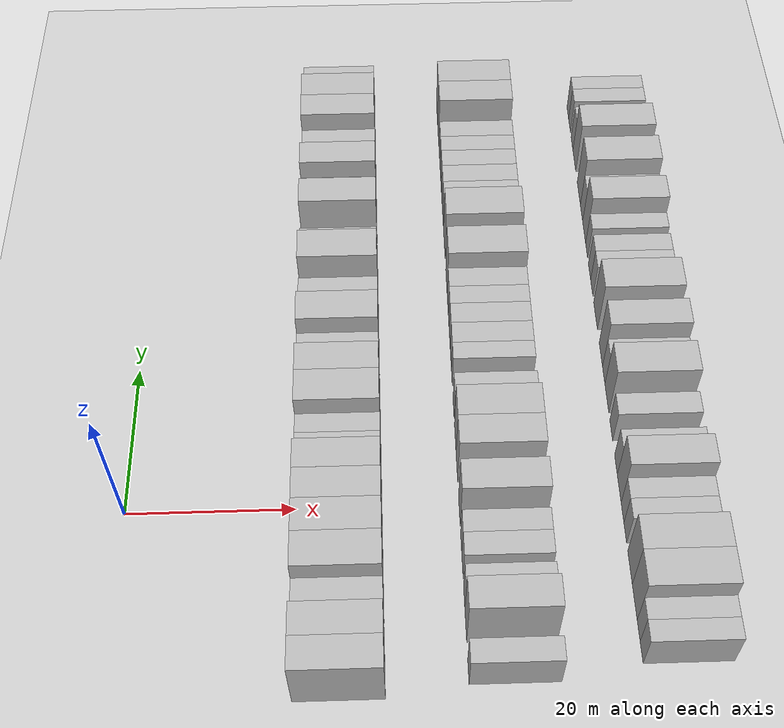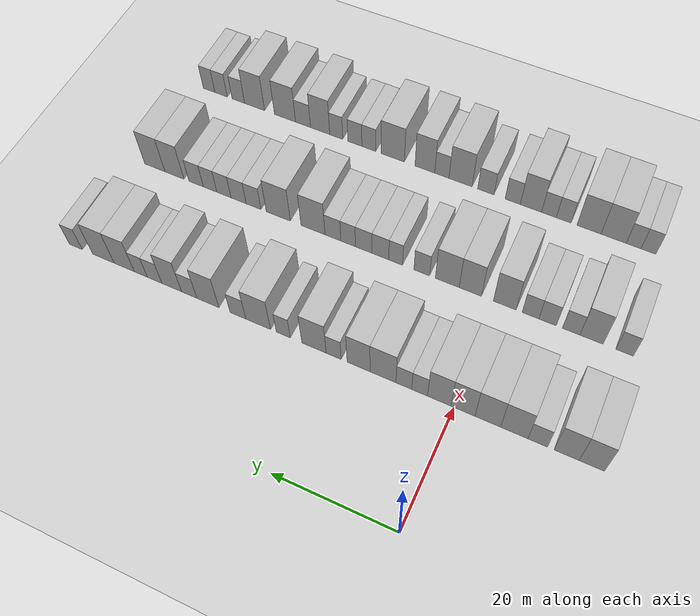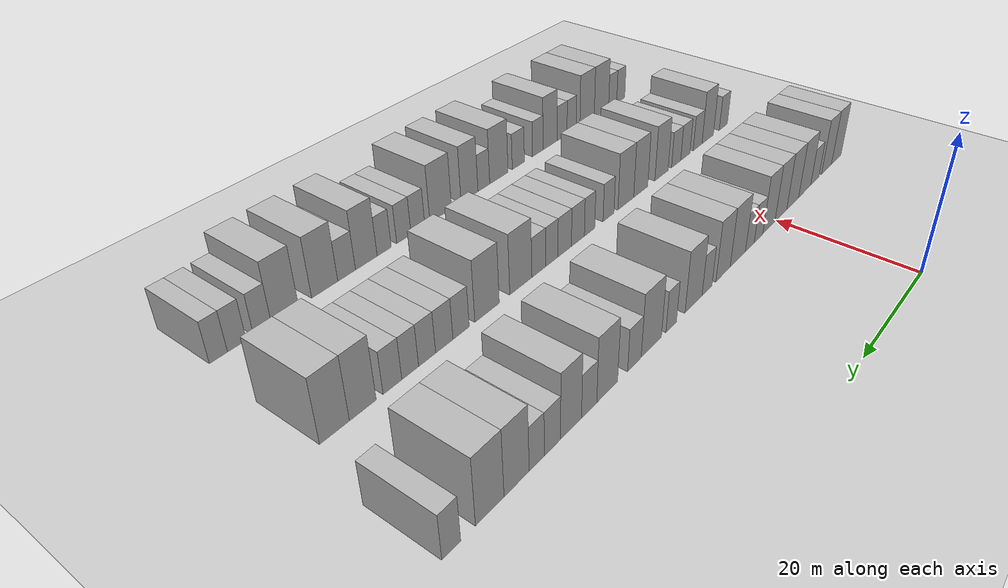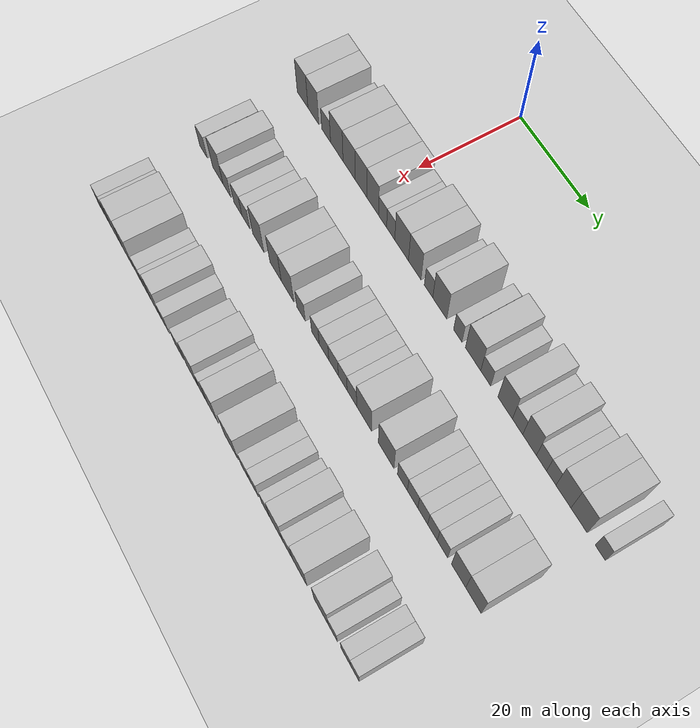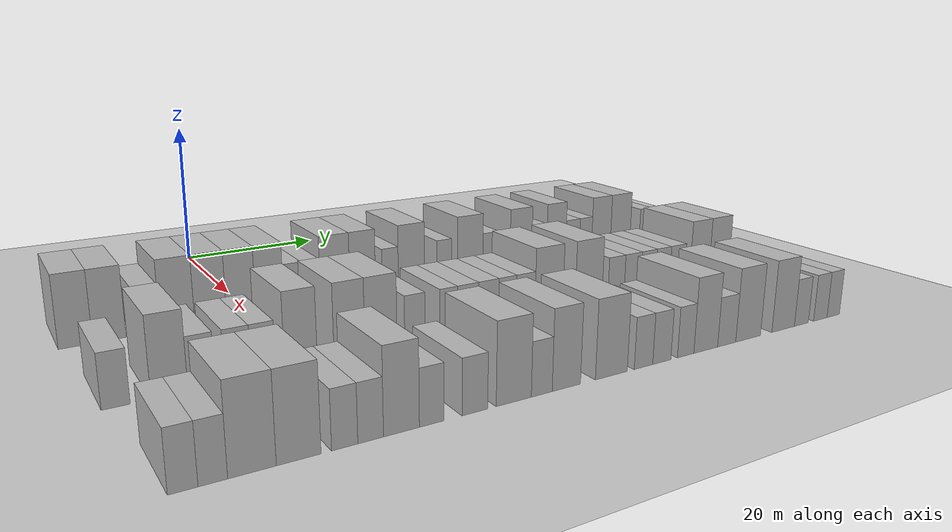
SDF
<sdf version="1.6">
 <world name="default">
  <include><name>ground_plane_1</name><uri>model://HANNAS_ground_plane</uri></include>
  <model name="building_81">
   <static>1</static>
   <pose>25.0000 -21.1155 0 0.000000 0.000000 0.000000</pose>
   <link name="link">
    <pose>0 0 4.50 0 0 0</pose>
    <collision name="collision"><geometry><box><size>10.0000 3.7570 9.0000</size></box></geometry></collision>
    <visual name="visual">
     <cast_shadows>0</cast_shadows>
     <geometry><box><size>10.0000 3.7570 9.0000</size></box></geometry>
     <material>
      <script>
       <uri>model://HANNAS_wall/materials/scripts</uri>
       <uri>model://HANNAS_wall/materials/textures</uri>
       <name>vrc/HANNAS_wall</name>
      </script>
     </material>
    </visual>
   </link>
  </model>
  <model name="building_82">
   <static>1</static>
   <pose>25.0000 -17.3538 0 0.000000 0.000000 0.000000</pose>
   <link name="link">
    <pose>0 0 4.50 0 0 0</pose>
    <collision name="collision"><geometry><box><size>10.0000 3.7665 9.0000</size></box></geometry></collision>
    <visual name="visual">
     <cast_shadows>0</cast_shadows>
     <geometry><box><size>10.0000 3.7665 9.0000</size></box></geometry>
     <material>
      <script>
       <uri>model://HANNAS_wall/materials/scripts</uri>
       <uri>model://HANNAS_wall/materials/textures</uri>
       <name>vrc/HANNAS_wall</name>
      </script>
     </material>
    </visual>
   </link>
  </model>
  <model name="building_83">
   <static>1</static>
   <pose>25.0000 -12.9726 0 0.000000 0.000000 0.000000</pose>
   <link name="link">
    <pose>0 0 3.00 0 0 0</pose>
    <collision name="collision"><geometry><box><size>10.0000 2.9958 6.0000</size></box></geometry></collision>
    <visual name="visual">
     <cast_shadows>0</cast_shadows>
     <geometry><box><size>10.0000 2.9958 6.0000</size></box></geometry>
     <material>
      <script>
       <uri>model://HANNAS_wall/materials/scripts</uri>
       <uri>model://HANNAS_wall/materials/textures</uri>
       <name>vrc/HANNAS_wall</name>
      </script>
     </material>
    </visual>
   </link>
  </model>
  <model name="building_84">
   <static>1</static>
   <pose>25.0000 -9.3769 0 0.000000 0.000000 0.000000</pose>
   <link name="link">
    <pose>0 0 4.50 0 0 0</pose>
    <collision name="collision"><geometry><box><size>10.0000 4.1956 9.0000</size></box></geometry></collision>
    <visual name="visual">
     <cast_shadows>0</cast_shadows>
     <geometry><box><size>10.0000 4.1956 9.0000</size></box></geometry>
     <material>
      <script>
       <uri>model://HANNAS_wall/materials/scripts</uri>
       <uri>model://HANNAS_wall/materials/textures</uri>
       <name>vrc/HANNAS_wall</name>
      </script>
     </material>
    </visual>
   </link>
  </model>
  <model name="building_85">
   <static>1</static>
   <pose>25.0000 -5.2779 0 0.000000 0.000000 0.000000</pose>
   <link name="link">
    <pose>0 0 4.50 0 0 0</pose>
    <collision name="collision"><geometry><box><size>10.0000 4.0022 9.0000</size></box></geometry></collision>
    <visual name="visual">
     <cast_shadows>0</cast_shadows>
     <geometry><box><size>10.0000 4.0022 9.0000</size></box></geometry>
     <material>
      <script>
       <uri>model://HANNAS_wall/materials/scripts</uri>
       <uri>model://HANNAS_wall/materials/textures</uri>
       <name>vrc/HANNAS_wall</name>
      </script>
     </material>
    </visual>
   </link>
  </model>
  <model name="building_86">
   <static>1</static>
   <pose>25.0000 -1.3721 0 0.000000 0.000000 0.000000</pose>
   <link name="link">
    <pose>0 0 4.50 0 0 0</pose>
    <collision name="collision"><geometry><box><size>10.0000 3.8095 9.0000</size></box></geometry></collision>
    <visual name="visual">
     <cast_shadows>0</cast_shadows>
     <geometry><box><size>10.0000 3.8095 9.0000</size></box></geometry>
     <material>
      <script>
       <uri>model://HANNAS_wall/materials/scripts</uri>
       <uri>model://HANNAS_wall/materials/textures</uri>
       <name>vrc/HANNAS_wall</name>
      </script>
     </material>
    </visual>
   </link>
  </model>
  <model name="building_87">
   <static>1</static>
   <pose>25.0000 2.4082 0 0.000000 0.000000 0.000000</pose>
   <link name="link">
    <pose>0 0 4.50 0 0 0</pose>
    <collision name="collision"><geometry><box><size>10.0000 3.7510 9.0000</size></box></geometry></collision>
    <visual name="visual">
     <cast_shadows>0</cast_shadows>
     <geometry><box><size>10.0000 3.7510 9.0000</size></box></geometry>
     <material>
      <script>
       <uri>model://HANNAS_wall/materials/scripts</uri>
       <uri>model://HANNAS_wall/materials/textures</uri>
       <name>vrc/HANNAS_wall</name>
      </script>
     </material>
    </visual>
   </link>
  </model>
  <model name="building_88">
   <static>1</static>
   <pose>25.0000 5.5675 0 0.000000 0.000000 0.000000</pose>
   <link name="link">
    <pose>0 0 3.00 0 0 0</pose>
    <collision name="collision"><geometry><box><size>10.0000 2.5676 6.0000</size></box></geometry></collision>
    <visual name="visual">
     <cast_shadows>0</cast_shadows>
     <geometry><box><size>10.0000 2.5676 6.0000</size></box></geometry>
     <material>
      <script>
       <uri>model://HANNAS_wall/materials/scripts</uri>
       <uri>model://HANNAS_wall/materials/textures</uri>
       <name>vrc/HANNAS_wall</name>
      </script>
     </material>
    </visual>
   </link>
  </model>
  <model name="building_89">
   <static>1</static>
   <pose>25.0000 8.1268 0 0.000000 0.000000 0.000000</pose>
   <link name="link">
    <pose>0 0 3.00 0 0 0</pose>
    <collision name="collision"><geometry><box><size>10.0000 2.5512 6.0000</size></box></geometry></collision>
    <visual name="visual">
     <cast_shadows>0</cast_shadows>
     <geometry><box><size>10.0000 2.5512 6.0000</size></box></geometry>
     <material>
      <script>
       <uri>model://HANNAS_wall/materials/scripts</uri>
       <uri>model://HANNAS_wall/materials/textures</uri>
       <name>vrc/HANNAS_wall</name>
      </script>
     </material>
    </visual>
   </link>
  </model>
  <model name="building_90">
   <static>1</static>
   <pose>25.0000 11.5328 0 0.000000 0.000000 0.000000</pose>
   <link name="link">
    <pose>0 0 4.50 0 0 0</pose>
    <collision name="collision"><geometry><box><size>10.0000 4.2607 9.0000</size></box></geometry></collision>
    <visual name="visual">
     <cast_shadows>0</cast_shadows>
     <geometry><box><size>10.0000 4.2607 9.0000</size></box></geometry>
     <material>
      <script>
       <uri>model://HANNAS_wall/materials/scripts</uri>
       <uri>model://HANNAS_wall/materials/textures</uri>
       <name>vrc/HANNAS_wall</name>
      </script>
     </material>
    </visual>
   </link>
  </model>
  <model name="building_91">
   <static>1</static>
   <pose>25.0000 15.5744 0 0.000000 0.000000 0.000000</pose>
   <link name="link">
    <pose>0 0 4.50 0 0 0</pose>
    <collision name="collision"><geometry><box><size>10.0000 3.8226 9.0000</size></box></geometry></collision>
    <visual name="visual">
     <cast_shadows>0</cast_shadows>
     <geometry><box><size>10.0000 3.8226 9.0000</size></box></geometry>
     <material>
      <script>
       <uri>model://HANNAS_wall/materials/scripts</uri>
       <uri>model://HANNAS_wall/materials/textures</uri>
       <name>vrc/HANNAS_wall</name>
      </script>
     </material>
    </visual>
   </link>
  </model>
  <model name="building_92">
   <static>1</static>
   <pose>25.0000 19.7482 0 0.000000 0.000000 0.000000</pose>
   <link name="link">
    <pose>0 0 3.00 0 0 0</pose>
    <collision name="collision"><geometry><box><size>10.0000 2.5250 6.0000</size></box></geometry></collision>
    <visual name="visual">
     <cast_shadows>0</cast_shadows>
     <geometry><box><size>10.0000 2.5250 6.0000</size></box></geometry>
     <material>
      <script>
       <uri>model://HANNAS_wall/materials/scripts</uri>
       <uri>model://HANNAS_wall/materials/textures</uri>
       <name>vrc/HANNAS_wall</name>
      </script>
     </material>
    </visual>
   </link>
  </model>
  <model name="building_93">
   <static>1</static>
   <pose>25.0000 23.0848 0 0.000000 0.000000 0.000000</pose>
   <link name="link">
    <pose>0 0 4.50 0 0 0</pose>
    <collision name="collision"><geometry><box><size>10.0000 4.1483 9.0000</size></box></geometry></collision>
    <visual name="visual">
     <cast_shadows>0</cast_shadows>
     <geometry><box><size>10.0000 4.1483 9.0000</size></box></geometry>
     <material>
      <script>
       <uri>model://HANNAS_wall/materials/scripts</uri>
       <uri>model://HANNAS_wall/materials/textures</uri>
       <name>vrc/HANNAS_wall</name>
      </script>
     </material>
    </visual>
   </link>
  </model>
  <model name="building_94">
   <static>1</static>
   <pose>25.0000 28.3677 0 0.000000 0.000000 0.000000</pose>
   <link name="link">
    <pose>0 0 3.00 0 0 0</pose>
    <collision name="collision"><geometry><box><size>10.0000 2.4173 6.0000</size></box></geometry></collision>
    <visual name="visual">
     <cast_shadows>0</cast_shadows>
     <geometry><box><size>10.0000 2.4173 6.0000</size></box></geometry>
     <material>
      <script>
       <uri>model://HANNAS_wall/materials/scripts</uri>
       <uri>model://HANNAS_wall/materials/textures</uri>
       <name>vrc/HANNAS_wall</name>
      </script>
     </material>
    </visual>
   </link>
  </model>
  <model name="building_95">
   <static>1</static>
   <pose>25.0000 32.7526 0 0.000000 0.000000 0.000000</pose>
   <link name="link">
    <pose>0 0 4.50 0 0 0</pose>
    <collision name="collision"><geometry><box><size>10.0000 4.3526 9.0000</size></box></geometry></collision>
    <visual name="visual">
     <cast_shadows>0</cast_shadows>
     <geometry><box><size>10.0000 4.3526 9.0000</size></box></geometry>
     <material>
      <script>
       <uri>model://HANNAS_wall/materials/scripts</uri>
       <uri>model://HANNAS_wall/materials/textures</uri>
       <name>vrc/HANNAS_wall</name>
      </script>
     </material>
    </visual>
   </link>
  </model>
  <model name="building_96">
   <static>1</static>
   <pose>25.0000 36.3295 0 0.000000 0.000000 0.000000</pose>
   <link name="link">
    <pose>0 0 3.00 0 0 0</pose>
    <collision name="collision"><geometry><box><size>10.0000 2.8012 6.0000</size></box></geometry></collision>
    <visual name="visual">
     <cast_shadows>0</cast_shadows>
     <geometry><box><size>10.0000 2.8012 6.0000</size></box></geometry>
     <material>
      <script>
       <uri>model://HANNAS_wall/materials/scripts</uri>
       <uri>model://HANNAS_wall/materials/textures</uri>
       <name>vrc/HANNAS_wall</name>
      </script>
     </material>
    </visual>
   </link>
  </model>
  <model name="building_97">
   <static>1</static>
   <pose>25.0000 41.7178 0 0.000000 0.000000 0.000000</pose>
   <link name="link">
    <pose>0 0 4.50 0 0 0</pose>
    <collision name="collision"><geometry><box><size>10.0000 3.9753 9.0000</size></box></geometry></collision>
    <visual name="visual">
     <cast_shadows>0</cast_shadows>
     <geometry><box><size>10.0000 3.9753 9.0000</size></box></geometry>
     <material>
      <script>
       <uri>model://HANNAS_wall/materials/scripts</uri>
       <uri>model://HANNAS_wall/materials/textures</uri>
       <name>vrc/HANNAS_wall</name>
      </script>
     </material>
    </visual>
   </link>
  </model>
  <model name="building_98">
   <static>1</static>
   <pose>25.0000 45.0978 0 0.000000 0.000000 0.000000</pose>
   <link name="link">
    <pose>0 0 3.00 0 0 0</pose>
    <collision name="collision"><geometry><box><size>10.0000 2.7848 6.0000</size></box></geometry></collision>
    <visual name="visual">
     <cast_shadows>0</cast_shadows>
     <geometry><box><size>10.0000 2.7848 6.0000</size></box></geometry>
     <material>
      <script>
       <uri>model://HANNAS_wall/materials/scripts</uri>
       <uri>model://HANNAS_wall/materials/textures</uri>
       <name>vrc/HANNAS_wall</name>
      </script>
     </material>
    </visual>
   </link>
  </model>
  <model name="building_99">
   <static>1</static>
   <pose>25.0000 48.3134 0 0.000000 0.000000 0.000000</pose>
   <link name="link">
    <pose>0 0 4.50 0 0 0</pose>
    <collision name="collision"><geometry><box><size>10.0000 3.6464 9.0000</size></box></geometry></collision>
    <visual name="visual">
     <cast_shadows>0</cast_shadows>
     <geometry><box><size>10.0000 3.6464 9.0000</size></box></geometry>
     <material>
      <script>
       <uri>model://HANNAS_wall/materials/scripts</uri>
       <uri>model://HANNAS_wall/materials/textures</uri>
       <name>vrc/HANNAS_wall</name>
      </script>
     </material>
    </visual>
   </link>
  </model>
  <model name="building_100">
   <static>1</static>
   <pose>25.0000 51.4805 0 0.000000 0.000000 0.000000</pose>
   <link name="link">
    <pose>0 0 3.00 0 0 0</pose>
    <collision name="collision"><geometry><box><size>10.0000 2.6877 6.0000</size></box></geometry></collision>
    <visual name="visual">
     <cast_shadows>0</cast_shadows>
     <geometry><box><size>10.0000 2.6877 6.0000</size></box></geometry>
     <material>
      <script>
       <uri>model://HANNAS_wall/materials/scripts</uri>
       <uri>model://HANNAS_wall/materials/textures</uri>
       <name>vrc/HANNAS_wall</name>
      </script>
     </material>
    </visual>
   </link>
  </model>
  <model name="building_101">
   <static>1</static>
   <pose>25.0000 54.0428 0 0.000000 0.000000 0.000000</pose>
   <link name="link">
    <pose>0 0 3.00 0 0 0</pose>
    <collision name="collision"><geometry><box><size>10.0000 2.4369 6.0000</size></box></geometry></collision>
    <visual name="visual">
     <cast_shadows>0</cast_shadows>
     <geometry><box><size>10.0000 2.4369 6.0000</size></box></geometry>
     <material>
      <script>
       <uri>model://HANNAS_wall/materials/scripts</uri>
       <uri>model://HANNAS_wall/materials/textures</uri>
       <name>vrc/HANNAS_wall</name>
      </script>
     </material>
    </visual>
   </link>
  </model>
  <model name="building_102">
   <static>1</static>
   <pose>25.0000 57.1786 0 0.000000 0.000000 0.000000</pose>
   <link name="link">
    <pose>0 0 4.50 0 0 0</pose>
    <collision name="collision"><geometry><box><size>10.0000 3.8346 9.0000</size></box></geometry></collision>
    <visual name="visual">
     <cast_shadows>0</cast_shadows>
     <geometry><box><size>10.0000 3.8346 9.0000</size></box></geometry>
     <material>
      <script>
       <uri>model://HANNAS_wall/materials/scripts</uri>
       <uri>model://HANNAS_wall/materials/textures</uri>
       <name>vrc/HANNAS_wall</name>
      </script>
     </material>
    </visual>
   </link>
  </model>
  <model name="building_103">
   <static>1</static>
   <pose>25.0000 61.1463 0 0.000000 0.000000 0.000000</pose>
   <link name="link">
    <pose>0 0 4.50 0 0 0</pose>
    <collision name="collision"><geometry><box><size>10.0000 4.1008 9.0000</size></box></geometry></collision>
    <visual name="visual">
     <cast_shadows>0</cast_shadows>
     <geometry><box><size>10.0000 4.1008 9.0000</size></box></geometry>
     <material>
      <script>
       <uri>model://HANNAS_wall/materials/scripts</uri>
       <uri>model://HANNAS_wall/materials/textures</uri>
       <name>vrc/HANNAS_wall</name>
      </script>
     </material>
    </visual>
   </link>
  </model>
  <model name="building_104">
   <static>1</static>
   <pose>25.0000 66.4457 0 0.000000 0.000000 0.000000</pose>
   <link name="link">
    <pose>0 0 3.00 0 0 0</pose>
    <collision name="collision"><geometry><box><size>10.0000 2.4981 6.0000</size></box></geometry></collision>
    <visual name="visual">
     <cast_shadows>0</cast_shadows>
     <geometry><box><size>10.0000 2.4981 6.0000</size></box></geometry>
     <material>
      <script>
       <uri>model://HANNAS_wall/materials/scripts</uri>
       <uri>model://HANNAS_wall/materials/textures</uri>
       <name>vrc/HANNAS_wall</name>
      </script>
     </material>
    </visual>
   </link>
  </model>
  <model name="building_261">
   <static>1</static>
   <pose>44.0000 -20.2800 0 0.000000 0.000000 0.000000</pose>
   <link name="link">
    <pose>0 0 3.00 0 0 0</pose>
    <collision name="collision"><geometry><box><size>10.0000 2.7658 6.0000</size></box></geometry></collision>
    <visual name="visual">
     <cast_shadows>0</cast_shadows>
     <geometry><box><size>10.0000 2.7658 6.0000</size></box></geometry>
     <material>
      <script>
       <uri>model://HANNAS_wall/materials/scripts</uri>
       <uri>model://HANNAS_wall/materials/textures</uri>
       <name>vrc/HANNAS_wall</name>
      </script>
     </material>
    </visual>
   </link>
  </model>
  <model name="building_262">
   <static>1</static>
   <pose>44.0000 -15.0343 0 0.000000 0.000000 0.000000</pose>
   <link name="link">
    <pose>0 0 4.50 0 0 0</pose>
    <collision name="collision"><geometry><box><size>10.0000 3.7255 9.0000</size></box></geometry></collision>
    <visual name="visual">
     <cast_shadows>0</cast_shadows>
     <geometry><box><size>10.0000 3.7255 9.0000</size></box></geometry>
     <material>
      <script>
       <uri>model://HANNAS_wall/materials/scripts</uri>
       <uri>model://HANNAS_wall/materials/textures</uri>
       <name>vrc/HANNAS_wall</name>
      </script>
     </material>
    </visual>
   </link>
  </model>
  <model name="building_263">
   <static>1</static>
   <pose>44.0000 -11.7603 0 0.000000 0.000000 0.000000</pose>
   <link name="link">
    <pose>0 0 3.00 0 0 0</pose>
    <collision name="collision"><geometry><box><size>10.0000 2.8225 6.0000</size></box></geometry></collision>
    <visual name="visual">
     <cast_shadows>0</cast_shadows>
     <geometry><box><size>10.0000 2.8225 6.0000</size></box></geometry>
     <material>
      <script>
       <uri>model://HANNAS_wall/materials/scripts</uri>
       <uri>model://HANNAS_wall/materials/textures</uri>
       <name>vrc/HANNAS_wall</name>
      </script>
     </material>
    </visual>
   </link>
  </model>
  <model name="building_264">
   <static>1</static>
   <pose>44.0000 -7.9225 0 0.000000 0.000000 0.000000</pose>
   <link name="link">
    <pose>0 0 3.00 0 0 0</pose>
    <collision name="collision"><geometry><box><size>10.0000 2.8533 6.0000</size></box></geometry></collision>
    <visual name="visual">
     <cast_shadows>0</cast_shadows>
     <geometry><box><size>10.0000 2.8533 6.0000</size></box></geometry>
     <material>
      <script>
       <uri>model://HANNAS_wall/materials/scripts</uri>
       <uri>model://HANNAS_wall/materials/textures</uri>
       <name>vrc/HANNAS_wall</name>
      </script>
     </material>
    </visual>
   </link>
  </model>
  <model name="building_265">
   <static>1</static>
   <pose>44.0000 -5.1209 0 0.000000 0.000000 0.000000</pose>
   <link name="link">
    <pose>0 0 3.00 0 0 0</pose>
    <collision name="collision"><geometry><box><size>10.0000 2.7499 6.0000</size></box></geometry></collision>
    <visual name="visual">
     <cast_shadows>0</cast_shadows>
     <geometry><box><size>10.0000 2.7499 6.0000</size></box></geometry>
     <material>
      <script>
       <uri>model://HANNAS_wall/materials/scripts</uri>
       <uri>model://HANNAS_wall/materials/textures</uri>
       <name>vrc/HANNAS_wall</name>
      </script>
     </material>
    </visual>
   </link>
  </model>
  <model name="building_266">
   <static>1</static>
   <pose>44.0000 -0.8465 0 0.000000 0.000000 0.000000</pose>
   <link name="link">
    <pose>0 0 4.50 0 0 0</pose>
    <collision name="collision"><geometry><box><size>10.0000 3.7989 9.0000</size></box></geometry></collision>
    <visual name="visual">
     <cast_shadows>0</cast_shadows>
     <geometry><box><size>10.0000 3.7989 9.0000</size></box></geometry>
     <material>
      <script>
       <uri>model://HANNAS_wall/materials/scripts</uri>
       <uri>model://HANNAS_wall/materials/textures</uri>
       <name>vrc/HANNAS_wall</name>
      </script>
     </material>
    </visual>
   </link>
  </model>
  <model name="building_267">
   <static>1</static>
   <pose>44.0000 4.9500 0 0.000000 0.000000 0.000000</pose>
   <link name="link">
    <pose>0 0 4.50 0 0 0</pose>
    <collision name="collision"><geometry><box><size>10.0000 3.7941 9.0000</size></box></geometry></collision>
    <visual name="visual">
     <cast_shadows>0</cast_shadows>
     <geometry><box><size>10.0000 3.7941 9.0000</size></box></geometry>
     <material>
      <script>
       <uri>model://HANNAS_wall/materials/scripts</uri>
       <uri>model://HANNAS_wall/materials/textures</uri>
       <name>vrc/HANNAS_wall</name>
      </script>
     </material>
    </visual>
   </link>
  </model>
  <model name="building_268">
   <static>1</static>
   <pose>44.0000 8.8960 0 0.000000 0.000000 0.000000</pose>
   <link name="link">
    <pose>0 0 4.50 0 0 0</pose>
    <collision name="collision"><geometry><box><size>10.0000 4.0979 9.0000</size></box></geometry></collision>
    <visual name="visual">
     <cast_shadows>0</cast_shadows>
     <geometry><box><size>10.0000 4.0979 9.0000</size></box></geometry>
     <material>
      <script>
       <uri>model://HANNAS_wall/materials/scripts</uri>
       <uri>model://HANNAS_wall/materials/textures</uri>
       <name>vrc/HANNAS_wall</name>
      </script>
     </material>
    </visual>
   </link>
  </model>
  <model name="building_269">
   <static>1</static>
   <pose>44.0000 13.3048 0 0.000000 0.000000 0.000000</pose>
   <link name="link">
    <pose>0 0 3.00 0 0 0</pose>
    <collision name="collision"><geometry><box><size>10.0000 2.7197 6.0000</size></box></geometry></collision>
    <visual name="visual">
     <cast_shadows>0</cast_shadows>
     <geometry><box><size>10.0000 2.7197 6.0000</size></box></geometry>
     <material>
      <script>
       <uri>model://HANNAS_wall/materials/scripts</uri>
       <uri>model://HANNAS_wall/materials/textures</uri>
       <name>vrc/HANNAS_wall</name>
      </script>
     </material>
    </visual>
   </link>
  </model>
  <model name="building_270">
   <static>1</static>
   <pose>44.0000 17.8804 0 0.000000 0.000000 0.000000</pose>
   <link name="link">
    <pose>0 0 3.00 0 0 0</pose>
    <collision name="collision"><geometry><box><size>10.0000 2.4316 6.0000</size></box></geometry></collision>
    <visual name="visual">
     <cast_shadows>0</cast_shadows>
     <geometry><box><size>10.0000 2.4316 6.0000</size></box></geometry>
     <material>
      <script>
       <uri>model://HANNAS_wall/materials/scripts</uri>
       <uri>model://HANNAS_wall/materials/textures</uri>
       <name>vrc/HANNAS_wall</name>
      </script>
     </material>
    </visual>
   </link>
  </model>
  <model name="building_271">
   <static>1</static>
   <pose>44.0000 20.5821 0 0.000000 0.000000 0.000000</pose>
   <link name="link">
    <pose>0 0 3.00 0 0 0</pose>
    <collision name="collision"><geometry><box><size>10.0000 2.9718 6.0000</size></box></geometry></collision>
    <visual name="visual">
     <cast_shadows>0</cast_shadows>
     <geometry><box><size>10.0000 2.9718 6.0000</size></box></geometry>
     <material>
      <script>
       <uri>model://HANNAS_wall/materials/scripts</uri>
       <uri>model://HANNAS_wall/materials/textures</uri>
       <name>vrc/HANNAS_wall</name>
      </script>
     </material>
    </visual>
   </link>
  </model>
  <model name="building_272">
   <static>1</static>
   <pose>44.0000 23.5474 0 0.000000 0.000000 0.000000</pose>
   <link name="link">
    <pose>0 0 3.00 0 0 0</pose>
    <collision name="collision"><geometry><box><size>10.0000 2.9587 6.0000</size></box></geometry></collision>
    <visual name="visual">
     <cast_shadows>0</cast_shadows>
     <geometry><box><size>10.0000 2.9587 6.0000</size></box></geometry>
     <material>
      <script>
       <uri>model://HANNAS_wall/materials/scripts</uri>
       <uri>model://HANNAS_wall/materials/textures</uri>
       <name>vrc/HANNAS_wall</name>
      </script>
     </material>
    </visual>
   </link>
  </model>
  <model name="building_273">
   <static>1</static>
   <pose>44.0000 26.3529 0 0.000000 0.000000 0.000000</pose>
   <link name="link">
    <pose>0 0 3.00 0 0 0</pose>
    <collision name="collision"><geometry><box><size>10.0000 2.6524 6.0000</size></box></geometry></collision>
    <visual name="visual">
     <cast_shadows>0</cast_shadows>
     <geometry><box><size>10.0000 2.6524 6.0000</size></box></geometry>
     <material>
      <script>
       <uri>model://HANNAS_wall/materials/scripts</uri>
       <uri>model://HANNAS_wall/materials/textures</uri>
       <name>vrc/HANNAS_wall</name>
      </script>
     </material>
    </visual>
   </link>
  </model>
  <model name="building_274">
   <static>1</static>
   <pose>44.0000 29.1200 0 0.000000 0.000000 0.000000</pose>
   <link name="link">
    <pose>0 0 3.00 0 0 0</pose>
    <collision name="collision"><geometry><box><size>10.0000 2.8819 6.0000</size></box></geometry></collision>
    <visual name="visual">
     <cast_shadows>0</cast_shadows>
     <geometry><box><size>10.0000 2.8819 6.0000</size></box></geometry>
     <material>
      <script>
       <uri>model://HANNAS_wall/materials/scripts</uri>
       <uri>model://HANNAS_wall/materials/textures</uri>
       <name>vrc/HANNAS_wall</name>
      </script>
     </material>
    </visual>
   </link>
  </model>
  <model name="building_275">
   <static>1</static>
   <pose>44.0000 32.7678 0 0.000000 0.000000 0.000000</pose>
   <link name="link">
    <pose>0 0 4.50 0 0 0</pose>
    <collision name="collision"><geometry><box><size>10.0000 4.4136 9.0000</size></box></geometry></collision>
    <visual name="visual">
     <cast_shadows>0</cast_shadows>
     <geometry><box><size>10.0000 4.4136 9.0000</size></box></geometry>
     <material>
      <script>
       <uri>model://HANNAS_wall/materials/scripts</uri>
       <uri>model://HANNAS_wall/materials/textures</uri>
       <name>vrc/HANNAS_wall</name>
      </script>
     </material>
    </visual>
   </link>
  </model>
  <model name="building_276">
   <static>1</static>
   <pose>44.0000 39.2244 0 0.000000 0.000000 0.000000</pose>
   <link name="link">
    <pose>0 0 4.50 0 0 0</pose>
    <collision name="collision"><geometry><box><size>10.0000 4.4996 9.0000</size></box></geometry></collision>
    <visual name="visual">
     <cast_shadows>0</cast_shadows>
     <geometry><box><size>10.0000 4.4996 9.0000</size></box></geometry>
     <material>
      <script>
       <uri>model://HANNAS_wall/materials/scripts</uri>
       <uri>model://HANNAS_wall/materials/textures</uri>
       <name>vrc/HANNAS_wall</name>
      </script>
     </material>
    </visual>
   </link>
  </model>
  <model name="building_277">
   <static>1</static>
   <pose>44.0000 43.8831 0 0.000000 0.000000 0.000000</pose>
   <link name="link">
    <pose>0 0 3.00 0 0 0</pose>
    <collision name="collision"><geometry><box><size>10.0000 2.8178 6.0000</size></box></geometry></collision>
    <visual name="visual">
     <cast_shadows>0</cast_shadows>
     <geometry><box><size>10.0000 2.8178 6.0000</size></box></geometry>
     <material>
      <script>
       <uri>model://HANNAS_wall/materials/scripts</uri>
       <uri>model://HANNAS_wall/materials/textures</uri>
       <name>vrc/HANNAS_wall</name>
      </script>
     </material>
    </visual>
   </link>
  </model>
  <model name="building_278">
   <static>1</static>
   <pose>44.0000 46.7448 0 0.000000 0.000000 0.000000</pose>
   <link name="link">
    <pose>0 0 3.00 0 0 0</pose>
    <collision name="collision"><geometry><box><size>10.0000 2.9056 6.0000</size></box></geometry></collision>
    <visual name="visual">
     <cast_shadows>0</cast_shadows>
     <geometry><box><size>10.0000 2.9056 6.0000</size></box></geometry>
     <material>
      <script>
       <uri>model://HANNAS_wall/materials/scripts</uri>
       <uri>model://HANNAS_wall/materials/textures</uri>
       <name>vrc/HANNAS_wall</name>
      </script>
     </material>
    </visual>
   </link>
  </model>
  <model name="building_279">
   <static>1</static>
   <pose>44.0000 49.5673 0 0.000000 0.000000 0.000000</pose>
   <link name="link">
    <pose>0 0 3.00 0 0 0</pose>
    <collision name="collision"><geometry><box><size>10.0000 2.7394 6.0000</size></box></geometry></collision>
    <visual name="visual">
     <cast_shadows>0</cast_shadows>
     <geometry><box><size>10.0000 2.7394 6.0000</size></box></geometry>
     <material>
      <script>
       <uri>model://HANNAS_wall/materials/scripts</uri>
       <uri>model://HANNAS_wall/materials/textures</uri>
       <name>vrc/HANNAS_wall</name>
      </script>
     </material>
    </visual>
   </link>
  </model>
  <model name="building_280">
   <static>1</static>
   <pose>44.0000 52.2454 0 0.000000 0.000000 0.000000</pose>
   <link name="link">
    <pose>0 0 3.00 0 0 0</pose>
    <collision name="collision"><geometry><box><size>10.0000 2.6169 6.0000</size></box></geometry></collision>
    <visual name="visual">
     <cast_shadows>0</cast_shadows>
     <geometry><box><size>10.0000 2.6169 6.0000</size></box></geometry>
     <material>
      <script>
       <uri>model://HANNAS_wall/materials/scripts</uri>
       <uri>model://HANNAS_wall/materials/textures</uri>
       <name>vrc/HANNAS_wall</name>
      </script>
     </material>
    </visual>
   </link>
  </model>
  <model name="building_281">
   <static>1</static>
   <pose>44.0000 54.9629 0 0.000000 0.000000 0.000000</pose>
   <link name="link">
    <pose>0 0 3.00 0 0 0</pose>
    <collision name="collision"><geometry><box><size>10.0000 2.8182 6.0000</size></box></geometry></collision>
    <visual name="visual">
     <cast_shadows>0</cast_shadows>
     <geometry><box><size>10.0000 2.8182 6.0000</size></box></geometry>
     <material>
      <script>
       <uri>model://HANNAS_wall/materials/scripts</uri>
       <uri>model://HANNAS_wall/materials/textures</uri>
       <name>vrc/HANNAS_wall</name>
      </script>
     </material>
    </visual>
   </link>
  </model>
  <model name="building_282">
   <static>1</static>
   <pose>44.0000 59.2622 0 0.000000 0.000000 0.000000</pose>
   <link name="link">
    <pose>0 0 4.50 0 0 0</pose>
    <collision name="collision"><geometry><box><size>10.0000 3.7804 9.0000</size></box></geometry></collision>
    <visual name="visual">
     <cast_shadows>0</cast_shadows>
     <geometry><box><size>10.0000 3.7804 9.0000</size></box></geometry>
     <material>
      <script>
       <uri>model://HANNAS_wall/materials/scripts</uri>
       <uri>model://HANNAS_wall/materials/textures</uri>
       <name>vrc/HANNAS_wall</name>
      </script>
     </material>
    </visual>
   </link>
  </model>
  <model name="building_283">
   <static>1</static>
   <pose>44.0000 63.1566 0 0.000000 0.000000 0.000000</pose>
   <link name="link">
    <pose>0 0 4.50 0 0 0</pose>
    <collision name="collision"><geometry><box><size>10.0000 4.0084 9.0000</size></box></geometry></collision>
    <visual name="visual">
     <cast_shadows>0</cast_shadows>
     <geometry><box><size>10.0000 4.0084 9.0000</size></box></geometry>
     <material>
      <script>
       <uri>model://HANNAS_wall/materials/scripts</uri>
       <uri>model://HANNAS_wall/materials/textures</uri>
       <name>vrc/HANNAS_wall</name>
      </script>
     </material>
    </visual>
   </link>
  </model>
  <model name="building_435">
   <static>1</static>
   <pose>63.0000 -18.6503 0 0.000000 0.000000 0.000000</pose>
   <link name="link">
    <pose>0 0 3.00 0 0 0</pose>
    <collision name="collision"><geometry><box><size>10.0000 2.4972 6.0000</size></box></geometry></collision>
    <visual name="visual">
     <cast_shadows>0</cast_shadows>
     <geometry><box><size>10.0000 2.4972 6.0000</size></box></geometry>
     <material>
      <script>
       <uri>model://HANNAS_wall/materials/scripts</uri>
       <uri>model://HANNAS_wall/materials/textures</uri>
       <name>vrc/HANNAS_wall</name>
      </script>
     </material>
    </visual>
   </link>
  </model>
  <model name="building_436">
   <static>1</static>
   <pose>63.0000 -16.1538 0 0.000000 0.000000 0.000000</pose>
   <link name="link">
    <pose>0 0 3.00 0 0 0</pose>
    <collision name="collision"><geometry><box><size>10.0000 2.4959 6.0000</size></box></geometry></collision>
    <visual name="visual">
     <cast_shadows>0</cast_shadows>
     <geometry><box><size>10.0000 2.4959 6.0000</size></box></geometry>
     <material>
      <script>
       <uri>model://HANNAS_wall/materials/scripts</uri>
       <uri>model://HANNAS_wall/materials/textures</uri>
       <name>vrc/HANNAS_wall</name>
      </script>
     </material>
    </visual>
   </link>
  </model>
  <model name="building_437">
   <static>1</static>
   <pose>63.0000 -12.7683 0 0.000000 0.000000 0.000000</pose>
   <link name="link">
    <pose>0 0 4.50 0 0 0</pose>
    <collision name="collision"><geometry><box><size>10.0000 4.2750 9.0000</size></box></geometry></collision>
    <visual name="visual">
     <cast_shadows>0</cast_shadows>
     <geometry><box><size>10.0000 4.2750 9.0000</size></box></geometry>
     <material>
      <script>
       <uri>model://HANNAS_wall/materials/scripts</uri>
       <uri>model://HANNAS_wall/materials/textures</uri>
       <name>vrc/HANNAS_wall</name>
      </script>
     </material>
    </visual>
   </link>
  </model>
  <model name="building_438">
   <static>1</static>
   <pose>63.0000 -8.5569 0 0.000000 0.000000 0.000000</pose>
   <link name="link">
    <pose>0 0 4.50 0 0 0</pose>
    <collision name="collision"><geometry><box><size>10.0000 4.1477 9.0000</size></box></geometry></collision>
    <visual name="visual">
     <cast_shadows>0</cast_shadows>
     <geometry><box><size>10.0000 4.1477 9.0000</size></box></geometry>
     <material>
      <script>
       <uri>model://HANNAS_wall/materials/scripts</uri>
       <uri>model://HANNAS_wall/materials/textures</uri>
       <name>vrc/HANNAS_wall</name>
      </script>
     </material>
    </visual>
   </link>
  </model>
  <model name="building_439">
   <static>1</static>
   <pose>63.0000 -4.1960 0 0.000000 0.000000 0.000000</pose>
   <link name="link">
    <pose>0 0 3.00 0 0 0</pose>
    <collision name="collision"><geometry><box><size>10.0000 2.5742 6.0000</size></box></geometry></collision>
    <visual name="visual">
     <cast_shadows>0</cast_shadows>
     <geometry><box><size>10.0000 2.5742 6.0000</size></box></geometry>
     <material>
      <script>
       <uri>model://HANNAS_wall/materials/scripts</uri>
       <uri>model://HANNAS_wall/materials/textures</uri>
       <name>vrc/HANNAS_wall</name>
      </script>
     </material>
    </visual>
   </link>
  </model>
  <model name="building_440">
   <static>1</static>
   <pose>63.0000 -1.6105 0 0.000000 0.000000 0.000000</pose>
   <link name="link">
    <pose>0 0 3.00 0 0 0</pose>
    <collision name="collision"><geometry><box><size>10.0000 2.5967 6.0000</size></box></geometry></collision>
    <visual name="visual">
     <cast_shadows>0</cast_shadows>
     <geometry><box><size>10.0000 2.5967 6.0000</size></box></geometry>
     <material>
      <script>
       <uri>model://HANNAS_wall/materials/scripts</uri>
       <uri>model://HANNAS_wall/materials/textures</uri>
       <name>vrc/HANNAS_wall</name>
      </script>
     </material>
    </visual>
   </link>
  </model>
  <model name="building_441">
   <static>1</static>
   <pose>63.0000 1.5656 0 0.000000 0.000000 0.000000</pose>
   <link name="link">
    <pose>0 0 4.50 0 0 0</pose>
    <collision name="collision"><geometry><box><size>10.0000 3.7555 9.0000</size></box></geometry></collision>
    <visual name="visual">
     <cast_shadows>0</cast_shadows>
     <geometry><box><size>10.0000 3.7555 9.0000</size></box></geometry>
     <material>
      <script>
       <uri>model://HANNAS_wall/materials/scripts</uri>
       <uri>model://HANNAS_wall/materials/textures</uri>
       <name>vrc/HANNAS_wall</name>
      </script>
     </material>
    </visual>
   </link>
  </model>
  <model name="building_442">
   <static>1</static>
   <pose>63.0000 4.7955 0 0.000000 0.000000 0.000000</pose>
   <link name="link">
    <pose>0 0 3.00 0 0 0</pose>
    <collision name="collision"><geometry><box><size>10.0000 2.7044 6.0000</size></box></geometry></collision>
    <visual name="visual">
     <cast_shadows>0</cast_shadows>
     <geometry><box><size>10.0000 2.7044 6.0000</size></box></geometry>
     <material>
      <script>
       <uri>model://HANNAS_wall/materials/scripts</uri>
       <uri>model://HANNAS_wall/materials/textures</uri>
       <name>vrc/HANNAS_wall</name>
      </script>
     </material>
    </visual>
   </link>
  </model>
  <model name="building_443">
   <static>1</static>
   <pose>63.0000 9.6226 0 0.000000 0.000000 0.000000</pose>
   <link name="link">
    <pose>0 0 3.00 0 0 0</pose>
    <collision name="collision"><geometry><box><size>10.0000 2.9498 6.0000</size></box></geometry></collision>
    <visual name="visual">
     <cast_shadows>0</cast_shadows>
     <geometry><box><size>10.0000 2.9498 6.0000</size></box></geometry>
     <material>
      <script>
       <uri>model://HANNAS_wall/materials/scripts</uri>
       <uri>model://HANNAS_wall/materials/textures</uri>
       <name>vrc/HANNAS_wall</name>
      </script>
     </material>
    </visual>
   </link>
  </model>
  <model name="building_444">
   <static>1</static>
   <pose>63.0000 14.2232 0 0.000000 0.000000 0.000000</pose>
   <link name="link">
    <pose>0 0 4.50 0 0 0</pose>
    <collision name="collision"><geometry><box><size>10.0000 4.2514 9.0000</size></box></geometry></collision>
    <visual name="visual">
     <cast_shadows>0</cast_shadows>
     <geometry><box><size>10.0000 4.2514 9.0000</size></box></geometry>
     <material>
      <script>
       <uri>model://HANNAS_wall/materials/scripts</uri>
       <uri>model://HANNAS_wall/materials/textures</uri>
       <name>vrc/HANNAS_wall</name>
      </script>
     </material>
    </visual>
   </link>
  </model>
  <model name="building_445">
   <static>1</static>
   <pose>63.0000 17.6641 0 0.000000 0.000000 0.000000</pose>
   <link name="link">
    <pose>0 0 3.00 0 0 0</pose>
    <collision name="collision"><geometry><box><size>10.0000 2.6304 6.0000</size></box></geometry></collision>
    <visual name="visual">
     <cast_shadows>0</cast_shadows>
     <geometry><box><size>10.0000 2.6304 6.0000</size></box></geometry>
     <material>
      <script>
       <uri>model://HANNAS_wall/materials/scripts</uri>
       <uri>model://HANNAS_wall/materials/textures</uri>
       <name>vrc/HANNAS_wall</name>
      </script>
     </material>
    </visual>
   </link>
  </model>
  <model name="building_446">
   <static>1</static>
   <pose>63.0000 20.8182 0 0.000000 0.000000 0.000000</pose>
   <link name="link">
    <pose>0 0 4.50 0 0 0</pose>
    <collision name="collision"><geometry><box><size>10.0000 3.6778 9.0000</size></box></geometry></collision>
    <visual name="visual">
     <cast_shadows>0</cast_shadows>
     <geometry><box><size>10.0000 3.6778 9.0000</size></box></geometry>
     <material>
      <script>
       <uri>model://HANNAS_wall/materials/scripts</uri>
       <uri>model://HANNAS_wall/materials/textures</uri>
       <name>vrc/HANNAS_wall</name>
      </script>
     </material>
    </visual>
   </link>
  </model>
  <model name="building_447">
   <static>1</static>
   <pose>63.0000 26.8643 0 0.000000 0.000000 0.000000</pose>
   <link name="link">
    <pose>0 0 4.50 0 0 0</pose>
    <collision name="collision"><geometry><box><size>10.0000 4.4143 9.0000</size></box></geometry></collision>
    <visual name="visual">
     <cast_shadows>0</cast_shadows>
     <geometry><box><size>10.0000 4.4143 9.0000</size></box></geometry>
     <material>
      <script>
       <uri>model://HANNAS_wall/materials/scripts</uri>
       <uri>model://HANNAS_wall/materials/textures</uri>
       <name>vrc/HANNAS_wall</name>
      </script>
     </material>
    </visual>
   </link>
  </model>
  <model name="building_448">
   <static>1</static>
   <pose>63.0000 31.4119 0 0.000000 0.000000 0.000000</pose>
   <link name="link">
    <pose>0 0 3.00 0 0 0</pose>
    <collision name="collision"><geometry><box><size>10.0000 2.6809 6.0000</size></box></geometry></collision>
    <visual name="visual">
     <cast_shadows>0</cast_shadows>
     <geometry><box><size>10.0000 2.6809 6.0000</size></box></geometry>
     <material>
      <script>
       <uri>model://HANNAS_wall/materials/scripts</uri>
       <uri>model://HANNAS_wall/materials/textures</uri>
       <name>vrc/HANNAS_wall</name>
      </script>
     </material>
    </visual>
   </link>
  </model>
  <model name="building_449">
   <static>1</static>
   <pose>63.0000 34.1039 0 0.000000 0.000000 0.000000</pose>
   <link name="link">
    <pose>0 0 3.00 0 0 0</pose>
    <collision name="collision"><geometry><box><size>10.0000 2.7030 6.0000</size></box></geometry></collision>
    <visual name="visual">
     <cast_shadows>0</cast_shadows>
     <geometry><box><size>10.0000 2.7030 6.0000</size></box></geometry>
     <material>
      <script>
       <uri>model://HANNAS_wall/materials/scripts</uri>
       <uri>model://HANNAS_wall/materials/textures</uri>
       <name>vrc/HANNAS_wall</name>
      </script>
     </material>
    </visual>
   </link>
  </model>
  <model name="building_450">
   <static>1</static>
   <pose>63.0000 37.7254 0 0.000000 0.000000 0.000000</pose>
   <link name="link">
    <pose>0 0 3.00 0 0 0</pose>
    <collision name="collision"><geometry><box><size>10.0000 2.5400 6.0000</size></box></geometry></collision>
    <visual name="visual">
     <cast_shadows>0</cast_shadows>
     <geometry><box><size>10.0000 2.5400 6.0000</size></box></geometry>
     <material>
      <script>
       <uri>model://HANNAS_wall/materials/scripts</uri>
       <uri>model://HANNAS_wall/materials/textures</uri>
       <name>vrc/HANNAS_wall</name>
      </script>
     </material>
    </visual>
   </link>
  </model>
  <model name="building_451">
   <static>1</static>
   <pose>63.0000 40.8870 0 0.000000 0.000000 0.000000</pose>
   <link name="link">
    <pose>0 0 4.50 0 0 0</pose>
    <collision name="collision"><geometry><box><size>10.0000 3.7831 9.0000</size></box></geometry></collision>
    <visual name="visual">
     <cast_shadows>0</cast_shadows>
     <geometry><box><size>10.0000 3.7831 9.0000</size></box></geometry>
     <material>
      <script>
       <uri>model://HANNAS_wall/materials/scripts</uri>
       <uri>model://HANNAS_wall/materials/textures</uri>
       <name>vrc/HANNAS_wall</name>
      </script>
     </material>
    </visual>
   </link>
  </model>
  <model name="building_452">
   <static>1</static>
   <pose>63.0000 44.2665 0 0.000000 0.000000 0.000000</pose>
   <link name="link">
    <pose>0 0 3.00 0 0 0</pose>
    <collision name="collision"><geometry><box><size>10.0000 2.9758 6.0000</size></box></geometry></collision>
    <visual name="visual">
     <cast_shadows>0</cast_shadows>
     <geometry><box><size>10.0000 2.9758 6.0000</size></box></geometry>
     <material>
      <script>
       <uri>model://HANNAS_wall/materials/scripts</uri>
       <uri>model://HANNAS_wall/materials/textures</uri>
       <name>vrc/HANNAS_wall</name>
      </script>
     </material>
    </visual>
   </link>
  </model>
  <model name="building_453">
   <static>1</static>
   <pose>63.0000 47.8612 0 0.000000 0.000000 0.000000</pose>
   <link name="link">
    <pose>0 0 4.50 0 0 0</pose>
    <collision name="collision"><geometry><box><size>10.0000 4.2136 9.0000</size></box></geometry></collision>
    <visual name="visual">
     <cast_shadows>0</cast_shadows>
     <geometry><box><size>10.0000 4.2136 9.0000</size></box></geometry>
     <material>
      <script>
       <uri>model://HANNAS_wall/materials/scripts</uri>
       <uri>model://HANNAS_wall/materials/textures</uri>
       <name>vrc/HANNAS_wall</name>
      </script>
     </material>
    </visual>
   </link>
  </model>
  <model name="building_454">
   <static>1</static>
   <pose>63.0000 53.9962 0 0.000000 0.000000 0.000000</pose>
   <link name="link">
    <pose>0 0 4.50 0 0 0</pose>
    <collision name="collision"><geometry><box><size>10.0000 4.0564 9.0000</size></box></geometry></collision>
    <visual name="visual">
     <cast_shadows>0</cast_shadows>
     <geometry><box><size>10.0000 4.0564 9.0000</size></box></geometry>
     <material>
      <script>
       <uri>model://HANNAS_wall/materials/scripts</uri>
       <uri>model://HANNAS_wall/materials/textures</uri>
       <name>vrc/HANNAS_wall</name>
      </script>
     </material>
    </visual>
   </link>
  </model>
  <model name="building_455">
   <static>1</static>
   <pose>63.0000 57.3100 0 0.000000 0.000000 0.000000</pose>
   <link name="link">
    <pose>0 0 3.00 0 0 0</pose>
    <collision name="collision"><geometry><box><size>10.0000 2.5714 6.0000</size></box></geometry></collision>
    <visual name="visual">
     <cast_shadows>0</cast_shadows>
     <geometry><box><size>10.0000 2.5714 6.0000</size></box></geometry>
     <material>
      <script>
       <uri>model://HANNAS_wall/materials/scripts</uri>
       <uri>model://HANNAS_wall/materials/textures</uri>
       <name>vrc/HANNAS_wall</name>
      </script>
     </material>
    </visual>
   </link>
  </model>
  <model name="building_456">
   <static>1</static>
   <pose>63.0000 60.8809 0 0.000000 0.000000 0.000000</pose>
   <link name="link">
    <pose>0 0 3.00 0 0 0</pose>
    <collision name="collision"><geometry><box><size>10.0000 2.5704 6.0000</size></box></geometry></collision>
    <visual name="visual">
     <cast_shadows>0</cast_shadows>
     <geometry><box><size>10.0000 2.5704 6.0000</size></box></geometry>
     <material>
      <script>
       <uri>model://HANNAS_wall/materials/scripts</uri>
       <uri>model://HANNAS_wall/materials/textures</uri>
       <name>vrc/HANNAS_wall</name>
      </script>
     </material>
    </visual>
   </link>
  </model>
  <model name="building_457">
   <static>1</static>
   <pose>63.0000 63.3690 0 0.000000 0.000000 0.000000</pose>
   <link name="link">
    <pose>0 0 3.00 0 0 0</pose>
    <collision name="collision"><geometry><box><size>10.0000 2.4057 6.0000</size></box></geometry></collision>
    <visual name="visual">
     <cast_shadows>0</cast_shadows>
     <geometry><box><size>10.0000 2.4057 6.0000</size></box></geometry>
     <material>
      <script>
       <uri>model://HANNAS_wall/materials/scripts</uri>
       <uri>model://HANNAS_wall/materials/textures</uri>
       <name>vrc/HANNAS_wall</name>
      </script>
     </material>
    </visual>
   </link>
  </model>
 </world>
</sdf>
